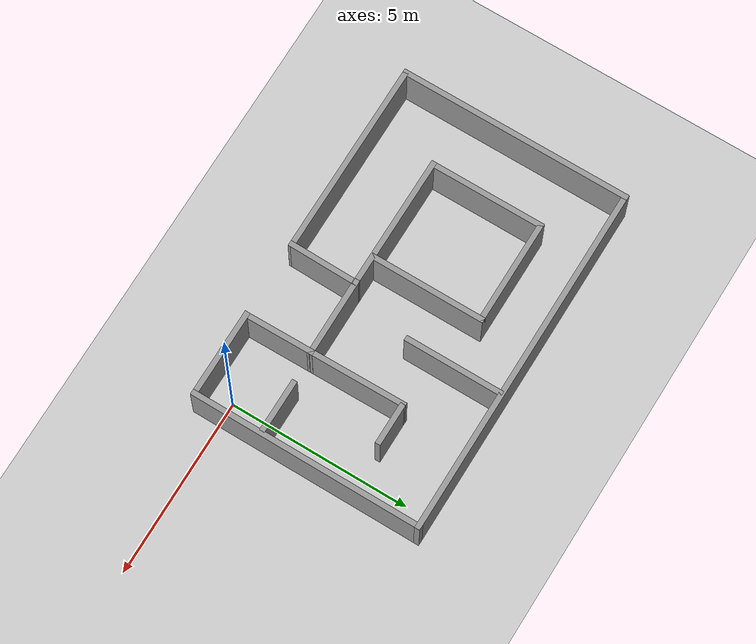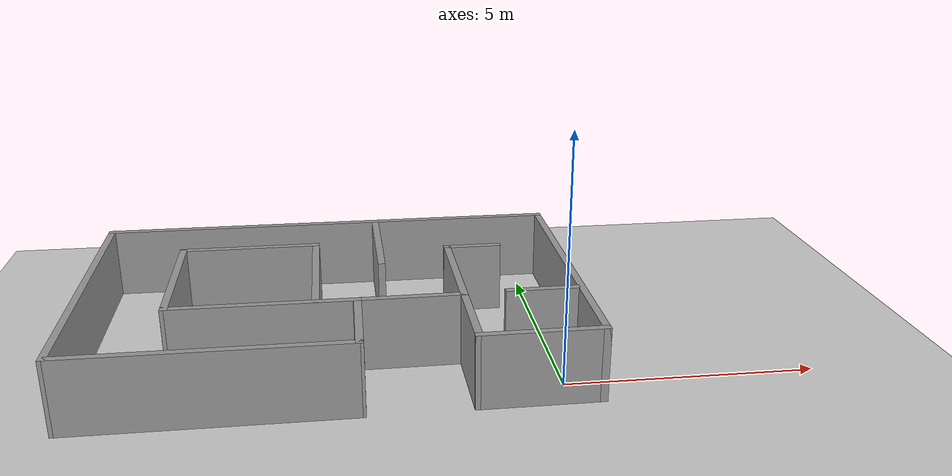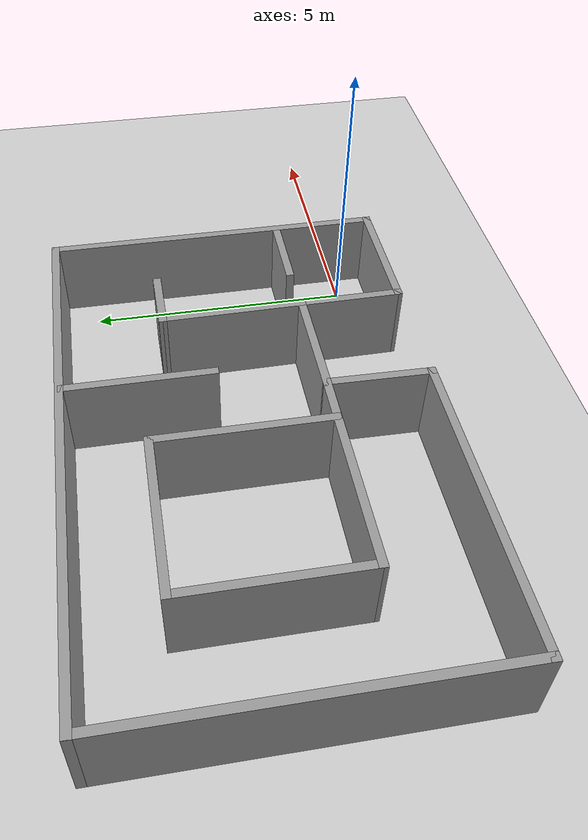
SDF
<sdf version="1.7">
 <world name="default">
  <light name="sun" type="directional">
   <pose>0 0 10 0 -0 0</pose>
   <diffuse>0.8 0.8 0.8 1</diffuse>
   <specular>0.2 0.2 0.2 1</specular>
   <attenuation>
    <range>1000</range>
    <constant>0.9</constant>
    <linear>0.01</linear>
    <quadratic>0.001</quadratic>
   </attenuation>
   <direction>-0.5 0.1 -0.9</direction>
   <spot><inner_angle>0</inner_angle><outer_angle>0</outer_angle><falloff>0</falloff></spot>
  </light>
  <model name="ground_plane">
   <static>1</static>
   <link name="link">
    <collision name="collision">
     <geometry><plane><normal>0 0 1</normal><size>100 100</size></plane></geometry>
     <surface>
      <contact><collide_bitmask>65535</collide_bitmask></contact>
      <friction><ode><mu>100</mu><mu2>50</mu2></ode></friction>
     </surface>
    </collision>
    <visual name="visual">
     <cast_shadows>0</cast_shadows>
     <geometry><plane><normal>0 0 1</normal><size>100 100</size></plane></geometry>
     <material>
      <script><uri>file://media/materials/scripts/gazebo.material</uri><name>Gazebo/Grey</name></script>
     </material>
    </visual>
   </link>
  </model>
  <gravity>0 0 -9.8</gravity>
  <magnetic_field>6e-06 2.3e-05 -4.2e-05</magnetic_field>
  <atmosphere type="adiabatic"/>
  <physics type="ode">
   <max_step_size>0.001</max_step_size>
   <real_time_factor>1</real_time_factor>
   <real_time_update_rate>1000</real_time_update_rate>
  </physics>
  <scene><ambient>0.4 0.4 0.4 1</ambient><background>0.7 0.7 0.7 1</background><shadows>1</shadows></scene>
  <audio><device>default</device></audio>
  <spherical_coordinates>
   <surface_model>EARTH_WGS84</surface_model>
   <latitude_deg>0</latitude_deg>
   <longitude_deg>0</longitude_deg>
   <elevation>0</elevation>
   <heading_deg>0</heading_deg>
  </spherical_coordinates>
  <model name="P1">
   <pose>-4.33148 2.50323 0 0 -0 0</pose>
   <link name="Wall_0">
    <collision name="Wall_0_Collision">
     <geometry><box><size>2.5 0.15 1.5</size></box></geometry>
     <pose>0 0 0.75 0 -0 0</pose>
    </collision>
    <visual name="Wall_0_Visual">
     <pose>0 0 0.75 0 -0 0</pose>
     <geometry><box><size>2.5 0.15 1.5</size></box></geometry>
     <material>
      <script><uri>file://media/materials/scripts/gazebo.material</uri><name>Gazebo/Grey</name></script>
      <ambient>1 1 1 1</ambient>
     </material>
     <meta><layer>0</layer></meta>
    </visual>
    <pose>3.75 -3.16949 0 0 -0 0</pose>
   </link>
   <link name="Wall_1">
    <collision name="Wall_1_Collision">
     <geometry><box><size>6.5 0.15 1.5</size></box></geometry>
     <pose>0 0 0.75 0 -0 0</pose>
    </collision>
    <visual name="Wall_1_Visual">
     <pose>0 0 0.75 0 -0 0</pose>
     <geometry><box><size>6.5 0.15 1.5</size></box></geometry>
     <material>
      <script><uri>file://media/materials/scripts/gazebo.material</uri><name>Gazebo/Grey</name></script>
      <ambient>1 1 1 1</ambient>
     </material>
     <meta><layer>0</layer></meta>
    </visual>
    <pose>4.925 0.005509 0 0 -0 1.5708</pose>
   </link>
   <link name="Wall_10">
    <collision name="Wall_10_Collision">
     <geometry><box><size>2.00068 0.15 1.5</size></box></geometry>
     <pose>0 0 0.75 0 -0 0</pose>
    </collision>
    <visual name="Wall_10_Visual">
     <pose>0 0 0.75 0 -0 0</pose>
     <geometry><box><size>2.00068 0.15 1.5</size></box></geometry>
     <material>
      <script><uri>file://media/materials/scripts/gazebo.material</uri><name>Gazebo/Grey</name></script>
      <ambient>1 1 1 1</ambient>
     </material>
     <meta><layer>0</layer></meta>
    </visual>
    <pose>2.565 -2.24449 0 0 -0 -1.55999</pose>
   </link>
   <link name="Wall_12">
    <collision name="Wall_12_Collision">
     <geometry><box><size>1.5 0.15 1.5</size></box></geometry>
     <pose>0 0 0.75 0 -0 0</pose>
    </collision>
    <visual name="Wall_12_Visual">
     <pose>0 0 0.75 0 -0 0</pose>
     <geometry><box><size>1.5 0.15 1.5</size></box></geometry>
     <material>
      <script><uri>file://media/materials/scripts/gazebo.material</uri><name>Gazebo/Grey</name></script>
      <ambient>1 1 1 1</ambient>
     </material>
     <meta><layer>0</layer></meta>
    </visual>
    <pose>4.133 -1.26449 0 0 -0 3.14159</pose>
   </link>
   <link name="Wall_14">
    <collision name="Wall_14_Collision">
     <geometry><box><size>2.75 0.15 1.5</size></box></geometry>
     <pose>0 0 0.75 0 -0 0</pose>
    </collision>
    <visual name="Wall_14_Visual">
     <pose>0 0 0.75 0 -0 0</pose>
     <geometry><box><size>2.75 0.15 1.5</size></box></geometry>
     <material>
      <script><uri>file://media/materials/scripts/gazebo.material</uri><name>Gazebo/Grey</name></script>
      <ambient>1 1 1 1</ambient>
     </material>
     <meta><layer>0</layer></meta>
    </visual>
    <pose>2.54 -0.019491 0 0 -0 1.58233</pose>
   </link>
   <link name="Wall_15">
    <collision name="Wall_15_Collision">
     <geometry><box><size>1.25 0.15 1.5</size></box></geometry>
     <pose>0 0 0.75 0 -0 0</pose>
    </collision>
    <visual name="Wall_15_Visual">
     <pose>0 0 0.75 0 -0 0</pose>
     <geometry><box><size>1.25 0.15 1.5</size></box></geometry>
     <material>
      <script><uri>file://media/materials/scripts/gazebo.material</uri><name>Gazebo/Grey</name></script>
      <ambient>1 1 1 1</ambient>
     </material>
     <meta><layer>0</layer></meta>
    </visual>
    <pose>3.075 1.28051 0 0 -0 0</pose>
   </link>
   <link name="Wall_17">
    <collision name="Wall_17_Collision">
     <geometry><box><size>2.75 0.15 1.5</size></box></geometry>
     <pose>0 0 0.75 0 -0 0</pose>
    </collision>
    <visual name="Wall_17_Visual">
     <pose>0 0 0.75 0 -0 0</pose>
     <geometry><box><size>2.75 0.15 1.5</size></box></geometry>
     <material>
      <script><uri>file://media/materials/scripts/gazebo.material</uri><name>Gazebo/Grey</name></script>
      <ambient>1 1 1 1</ambient>
     </material>
     <meta><layer>0</layer></meta>
    </visual>
    <pose>1.047 1.82551 0 0 -0 -1.5708</pose>
   </link>
   <link name="Wall_19">
    <collision name="Wall_19_Collision">
     <geometry><box><size>3.80043 0.15 1.5</size></box></geometry>
     <pose>0 0 0.75 0 -0 0</pose>
    </collision>
    <visual name="Wall_19_Visual">
     <pose>0 0 0.75 0 -0 0</pose>
     <geometry><box><size>3.80043 0.15 1.5</size></box></geometry>
     <material>
      <script><uri>file://media/materials/scripts/gazebo.material</uri><name>Gazebo/Grey</name></script>
      <ambient>1 1 1 1</ambient>
     </material>
     <meta><layer>0</layer></meta>
    </visual>
    <pose>-1.34979 -1.32449 0 0 -0 3.13885</pose>
   </link>
   <link name="Wall_2">
    <collision name="Wall_2_Collision">
     <geometry><box><size>10 0.15 1.5</size></box></geometry>
     <pose>0 0 0.75 0 -0 0</pose>
    </collision>
    <visual name="Wall_2_Visual">
     <pose>0 0 0.75 0 -0 0</pose>
     <geometry><box><size>10 0.15 1.5</size></box></geometry>
     <material>
      <script><uri>file://media/materials/scripts/gazebo.material</uri><name>Gazebo/Grey</name></script>
      <ambient>1 1 1 1</ambient>
     </material>
     <meta><layer>0</layer></meta>
    </visual>
    <pose>0 3.18051 0 0 -0 3.14159</pose>
   </link>
   <link name="Wall_20">
    <collision name="Wall_20_Collision">
     <geometry><box><size>3.25 0.15 1.5</size></box></geometry>
     <pose>0 0 0.75 0 -0 0</pose>
    </collision>
    <visual name="Wall_20_Visual">
     <pose>0 0 0.75 0 -0 0</pose>
     <geometry><box><size>3.25 0.15 1.5</size></box></geometry>
     <material>
      <script><uri>file://media/materials/scripts/gazebo.material</uri><name>Gazebo/Grey</name></script>
      <ambient>1 1 1 1</ambient>
     </material>
     <meta><layer>0</layer></meta>
    </visual>
    <pose>-3.175 0.230509 0 0 -0 1.5708</pose>
   </link>
   <link name="Wall_21">
    <collision name="Wall_21_Collision">
     <geometry><box><size>3 0.15 1.5</size></box></geometry>
     <pose>0 0 0.75 0 -0 0</pose>
    </collision>
    <visual name="Wall_21_Visual">
     <pose>0 0 0.75 0 -0 0</pose>
     <geometry><box><size>3 0.15 1.5</size></box></geometry>
     <material>
      <script><uri>file://media/materials/scripts/gazebo.material</uri><name>Gazebo/Grey</name></script>
      <ambient>1 1 1 1</ambient>
     </material>
     <meta><layer>0</layer></meta>
    </visual>
    <pose>-1.75 1.78051 0 0 -0 0</pose>
   </link>
   <link name="Wall_22">
    <collision name="Wall_22_Collision">
     <geometry><box><size>3.25 0.15 1.5</size></box></geometry>
     <pose>0 0 0.75 0 -0 0</pose>
    </collision>
    <visual name="Wall_22_Visual">
     <pose>0 0 0.75 0 -0 0</pose>
     <geometry><box><size>3.25 0.15 1.5</size></box></geometry>
     <material>
      <script><uri>file://media/materials/scripts/gazebo.material</uri><name>Gazebo/Grey</name></script>
      <ambient>1 1 1 1</ambient>
     </material>
     <meta><layer>0</layer></meta>
    </visual>
    <pose>-0.325 0.230509 0 0 -0 -1.5708</pose>
   </link>
   <link name="Wall_3">
    <collision name="Wall_3_Collision">
     <geometry><box><size>6.5 0.15 1.5</size></box></geometry>
     <pose>0 0 0.75 0 -0 0</pose>
    </collision>
    <visual name="Wall_3_Visual">
     <pose>0 0 0.75 0 -0 0</pose>
     <geometry><box><size>6.5 0.15 1.5</size></box></geometry>
     <material>
      <script><uri>file://media/materials/scripts/gazebo.material</uri><name>Gazebo/Grey</name></script>
      <ambient>1 1 1 1</ambient>
     </material>
     <meta><layer>0</layer></meta>
    </visual>
    <pose>-4.925 0.005509 0 0 -0 -1.5708</pose>
   </link>
   <link name="Wall_4">
    <collision name="Wall_4_Collision">
     <geometry><box><size>5.51972 0.15 1.5</size></box></geometry>
     <pose>0 0 0.75 0 -0 0</pose>
    </collision>
    <visual name="Wall_4_Visual">
     <pose>0 0 0.75 0 -0 0</pose>
     <geometry><box><size>5.51972 0.15 1.5</size></box></geometry>
     <material>
      <script><uri>file://media/materials/scripts/gazebo.material</uri><name>Gazebo/Grey</name></script>
      <ambient>1 1 1 1</ambient>
     </material>
     <meta><layer>0</layer></meta>
    </visual>
    <pose>-2.24 -3.17449 0 0 -0 -0.001862</pose>
   </link>
   <link name="Wall_8">
    <collision name="Wall_8_Collision">
     <geometry><box><size>1.99984 0.15 1.5</size></box></geometry>
     <pose>0 0 0.75 0 -0 0</pose>
    </collision>
    <visual name="Wall_8_Visual">
     <pose>0 0 0.75 0 -0 0</pose>
     <geometry><box><size>1.99984 0.15 1.5</size></box></geometry>
     <material>
      <script><uri>file://media/materials/scripts/gazebo.material</uri><name>Gazebo/Grey</name></script>
      <ambient>1 1 1 1</ambient>
     </material>
     <meta><layer>0</layer></meta>
    </visual>
    <pose>0.460209 -2.25449 0 0 -0 1.55436</pose>
   </link>
   <link name="Wall_9">
    <collision name="Wall_9_Collision">
     <geometry><box><size>2.24482 0.15 1.5</size></box></geometry>
     <pose>0 0 0.75 0 -0 0</pose>
    </collision>
    <visual name="Wall_9_Visual">
     <pose>0 0 0.75 0 -0 0</pose>
     <geometry><box><size>2.24482 0.15 1.5</size></box></geometry>
     <material>
      <script><uri>file://media/materials/scripts/gazebo.material</uri><name>Gazebo/Grey</name></script>
      <ambient>1 1 1 1</ambient>
     </material>
     <meta><layer>0</layer></meta>
    </visual>
    <pose>1.5076 -1.32449 0 0 -0 0.004774</pose>
   </link>
   <static>1</static>
  </model>
 </world>
</sdf>
